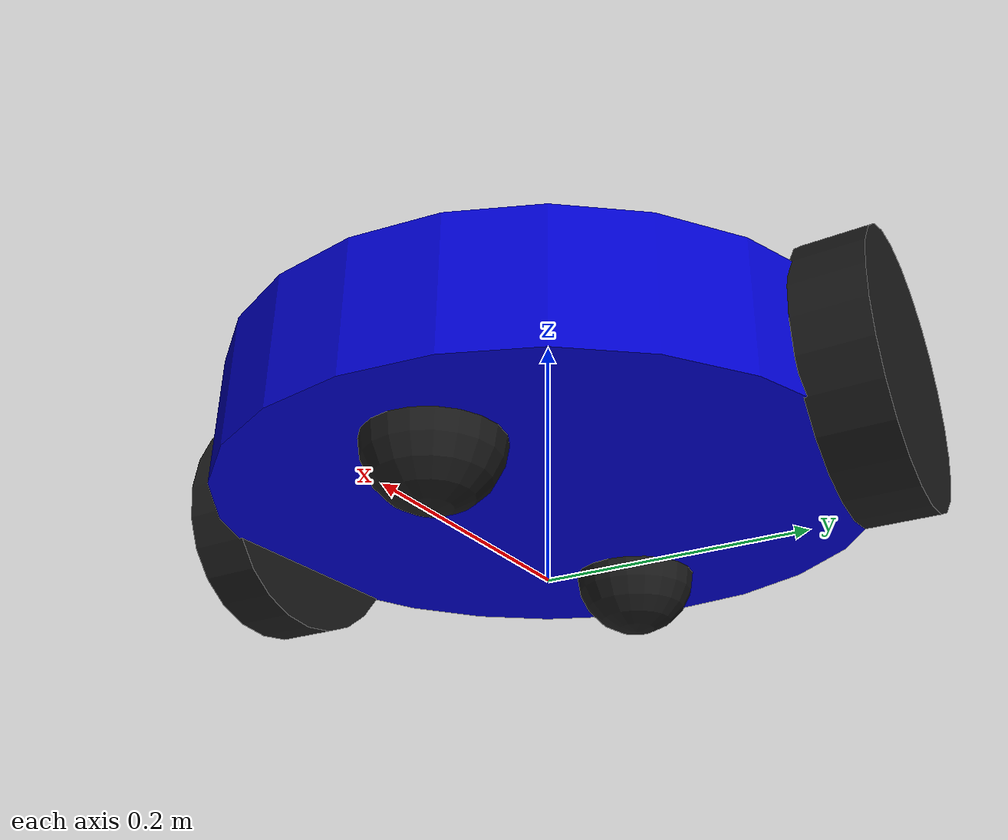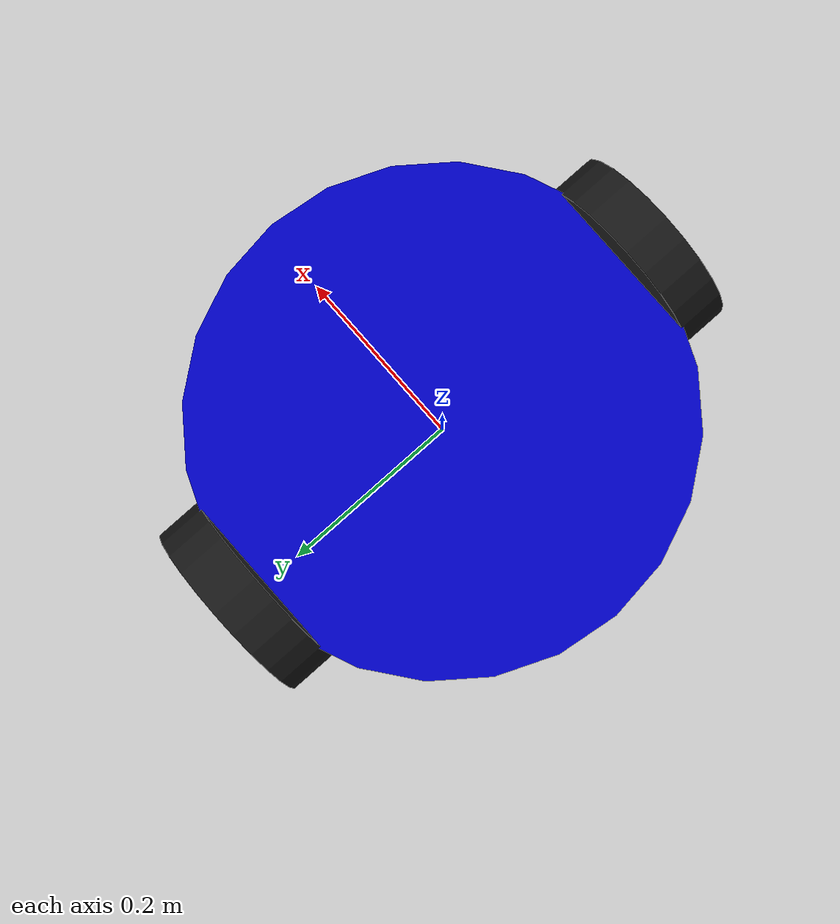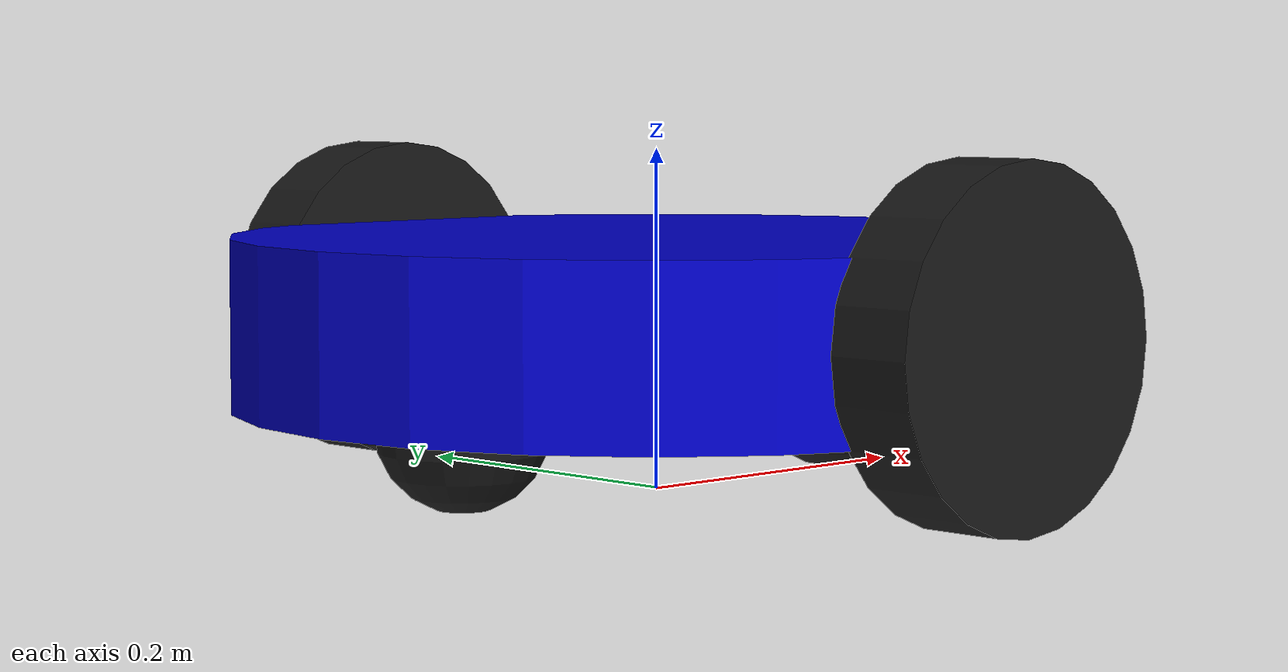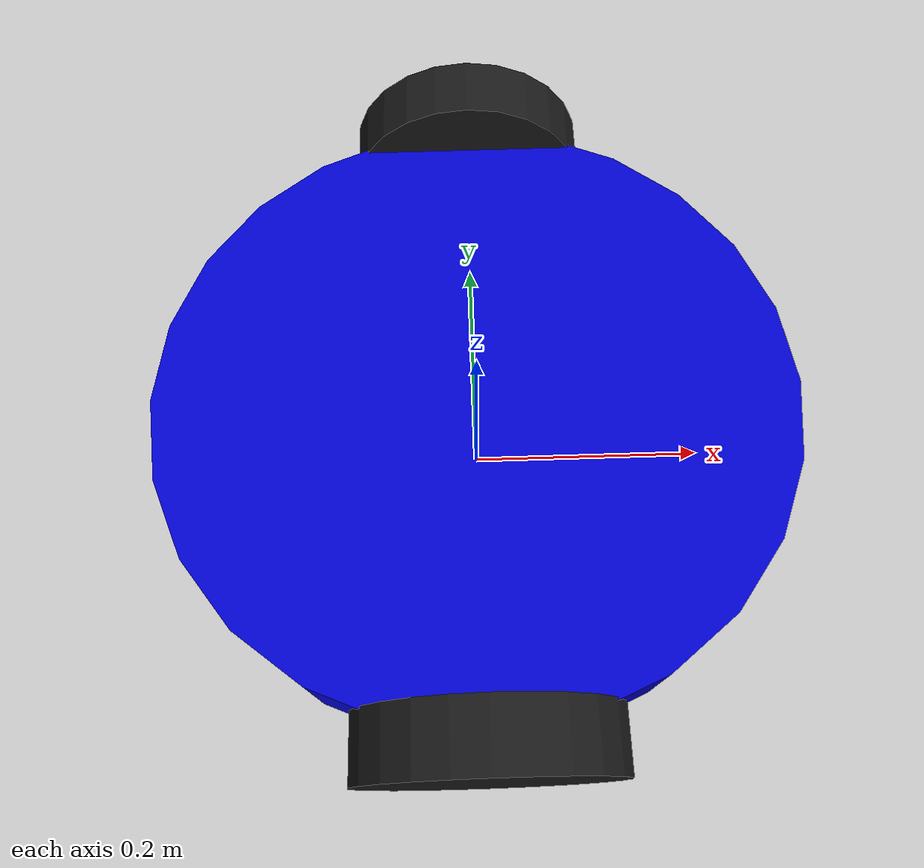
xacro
<?xml version="1.0"?>
<robot name="debug_bot" xmlns:xacro="http://www.ros.org/wiki/xacro">

    <xacro:property name="PI" value="3.1415926535897931"/>
    <link name="base_footprint"/>
    <joint name="base_joint" type="fixed">
      <parent link="base_footprint"/>
      <child link="base_link"/>
      <origin xyz="0 0 0.1" rpy="0 0 0"/>
    </joint>
    <link name="base_link">
      <visual><geometry><cylinder radius="0.25" length="0.1"/></geometry><material name="blue"><color rgba="0.0 0.0 0.8 1.0"/></material></visual>
      <collision><geometry><cylinder radius="0.25" length="0.1"/></geometry></collision>
      <inertial><mass value="5.0"/><inertia ixx="0.1" ixy="0" ixz="0" iyy="0.1" iyz="0" izz="0.1"/></inertial>
    </link>
    <xacro:macro name="wheel" params="prefix side y_pos">
      <joint name="${prefix}${side}_wheel_joint" type="continuous"><parent link="base_link"/><child link="${prefix}${side}_wheel_link"/><origin xyz="0 ${y_pos} 0" rpy="-${PI/2} 0 0"/><axis xyz="0 0 1"/></joint>
      <link name="${prefix}${side}_wheel_link">
        <visual><geometry><cylinder radius="0.1" length="0.05"/></geometry><material name="black"><color rgba="0.1 0.1 0.1 1.0"/></material></visual>
        <collision><geometry><cylinder radius="0.1" length="0.05"/></geometry></collision>
        <inertial><mass value="0.5"/><inertia ixx="0.01" ixy="0" ixz="0" iyy="0.01" iyz="0" izz="0.01"/></inertial>
      </link>
    </xacro:macro>
    <xacro:wheel prefix="" side="left" y_pos="0.255"/>
    <xacro:wheel prefix="" side="right" y_pos="-0.255"/>
    <xacro:macro name="caster_wheel" params="prefix x_pos">
        <joint name="${prefix}caster_${x_pos}_joint" type="fixed"><parent link="base_link"/><child link="${prefix}caster_${x_pos}_link"/><origin xyz="${x_pos} 0 -0.05" rpy="0 0 0"/></joint>
        <link name="${prefix}caster_${x_pos}_link">
            <visual><geometry><sphere radius="0.05"/></geometry><material name="black"><color rgba="0.1 0.1 0.1 1.0"/></material></visual>
            <collision><geometry><sphere radius="0.05"/></geometry></collision>
            <inertial><mass value="0.2"/><inertia ixx="0.001" ixy="0" ixz="0" iyy="0.001" iyz="0" izz="0.001"/></inertial>
        </link>
    </xacro:macro>
    <xacro:caster_wheel prefix="" x_pos="0.15"/>
    <xacro:caster_wheel prefix="" x_pos="-0.15"/>
</robot>
